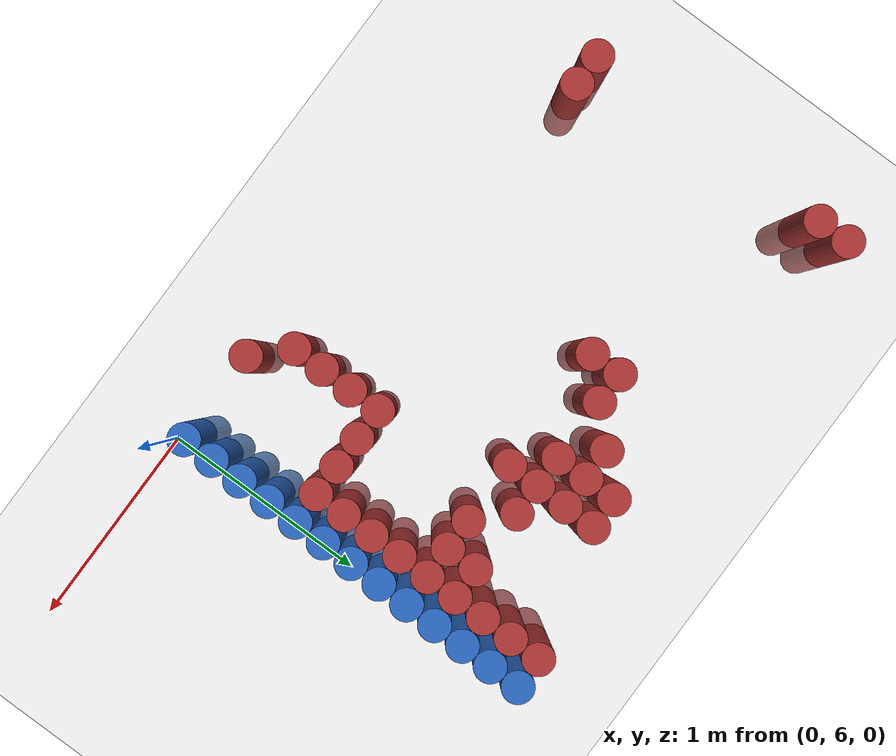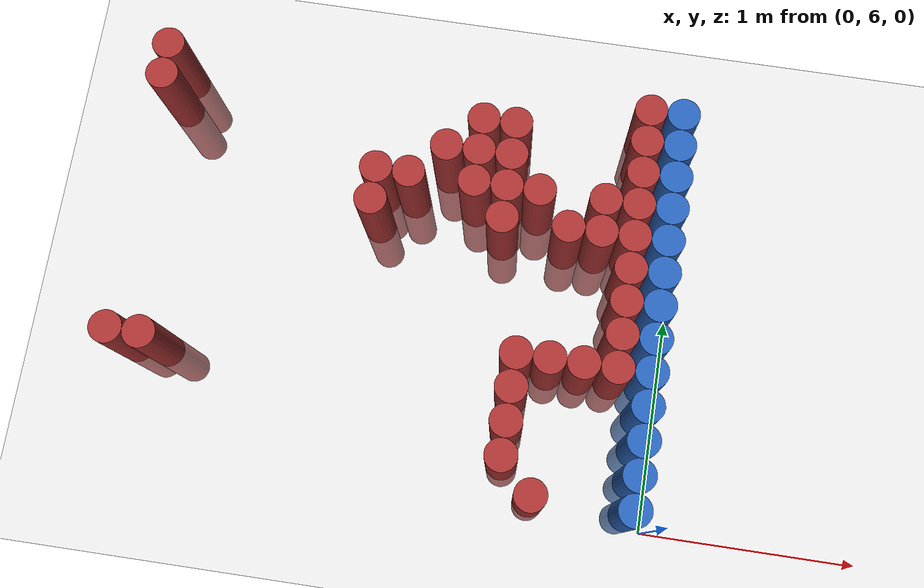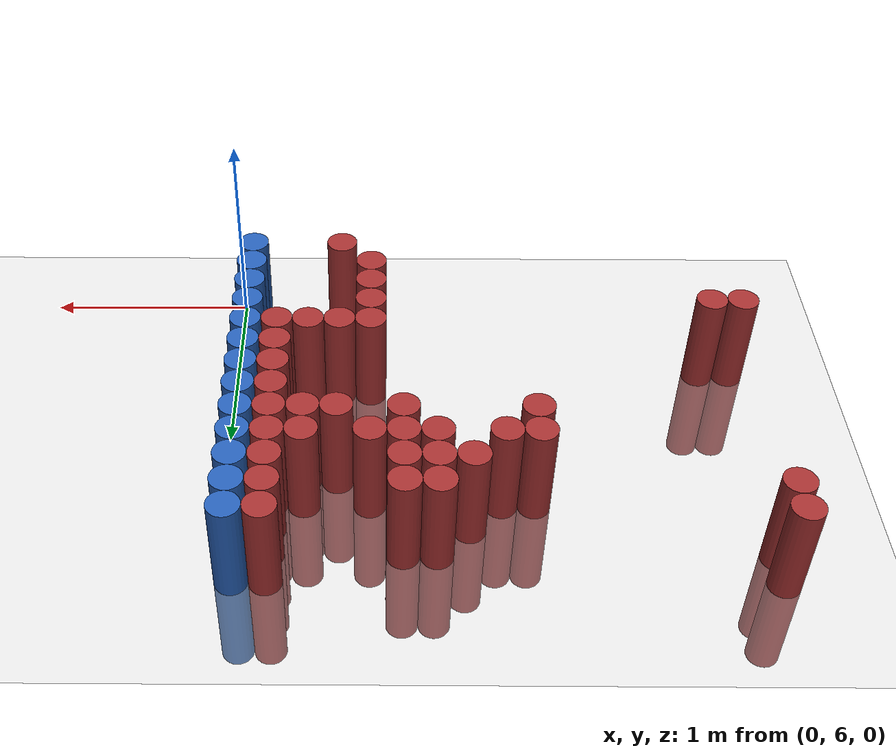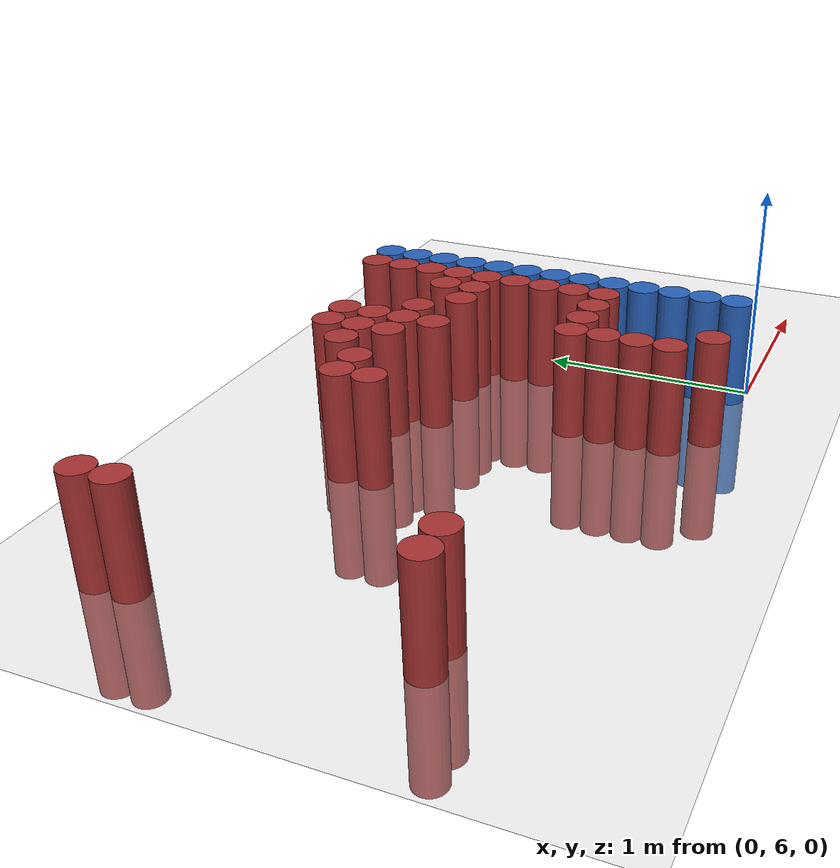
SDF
<sdf version="1.6">
 <world name="default">
  <model name="ground_plane">
   <static>1</static>
   <link name="link">
    <collision name="collision">
     <geometry><plane><normal>0 0 1</normal><size>100 100</size></plane></geometry>
     <surface><friction><ode><mu>100</mu><mu2>50</mu2></ode></friction></surface>
    </collision>
    <visual name="visual">
     <cast_shadows>0</cast_shadows>
     <geometry><plane><normal>0 0 1</normal><size>100 100</size></plane></geometry>
     <material>
      <script><uri>file://media/materials/scripts/gazebo.material</uri><name>Gazebo/Grey</name></script>
     </material>
    </visual>
   </link>
  </model>
  <model name="unit_cylinder_227">
   <static>1</static>
   <pose>-2.475000 6.525000 0.000000 0.000000 0.000000 0.000000</pose>
   <link name="link">
    <inertial>
     <mass>1</mass>
     <inertia><ixx>0.145833</ixx><ixy>0</ixy><ixz>0</ixz><iyy>0.145833</iyy><iyz>0</iyz><izz>0.125</izz></inertia>
    </inertial>
    <collision name="collision">
     <geometry><cylinder><radius>0.075000</radius><length>1</length></cylinder></geometry>
    </collision>
    <visual name="visual">
     <geometry><cylinder><radius>0.075000</radius><length>1</length></cylinder></geometry>
     <material>
      <ambient>0.648000 0.192000 0.192000 1</ambient>
      <diffuse>0.648000 0.192000 0.192000 1</diffuse>
     </material>
     <material>
      <script><name>Gazebo/Grey</name><uri>file://media/materials/scripts/gazebo.material</uri></script>
     </material>
    </visual>
   </link>
  </model>
  <model name="unit_cylinder_228">
   <static>1</static>
   <pose>-2.475000 7.725000 0.000000 0.000000 0.000000 0.000000</pose>
   <link name="link">
    <inertial>
     <mass>1</mass>
     <inertia><ixx>0.145833</ixx><ixy>0</ixy><ixz>0</ixz><iyy>0.145833</iyy><iyz>0</iyz><izz>0.125</izz></inertia>
    </inertial>
    <collision name="collision">
     <geometry><cylinder><radius>0.075000</radius><length>1</length></cylinder></geometry>
    </collision>
    <visual name="visual">
     <geometry><cylinder><radius>0.075000</radius><length>1</length></cylinder></geometry>
     <material>
      <ambient>0.648000 0.192000 0.192000 1</ambient>
      <diffuse>0.648000 0.192000 0.192000 1</diffuse>
     </material>
     <material>
      <script><name>Gazebo/Grey</name><uri>file://media/materials/scripts/gazebo.material</uri></script>
     </material>
    </visual>
   </link>
  </model>
  <model name="unit_cylinder_229">
   <static>1</static>
   <pose>-2.475000 7.875000 0.000000 0.000000 0.000000 0.000000</pose>
   <link name="link">
    <inertial>
     <mass>1</mass>
     <inertia><ixx>0.145833</ixx><ixy>0</ixy><ixz>0</ixz><iyy>0.145833</iyy><iyz>0</iyz><izz>0.125</izz></inertia>
    </inertial>
    <collision name="collision">
     <geometry><cylinder><radius>0.075000</radius><length>1</length></cylinder></geometry>
    </collision>
    <visual name="visual">
     <geometry><cylinder><radius>0.075000</radius><length>1</length></cylinder></geometry>
     <material>
      <ambient>0.648000 0.192000 0.192000 1</ambient>
      <diffuse>0.648000 0.192000 0.192000 1</diffuse>
     </material>
     <material>
      <script><name>Gazebo/Grey</name><uri>file://media/materials/scripts/gazebo.material</uri></script>
     </material>
    </visual>
   </link>
  </model>
  <model name="unit_cylinder_233">
   <static>1</static>
   <pose>-2.325000 6.525000 0.000000 0.000000 0.000000 0.000000</pose>
   <link name="link">
    <inertial>
     <mass>1</mass>
     <inertia><ixx>0.145833</ixx><ixy>0</ixy><ixz>0</ixz><iyy>0.145833</iyy><iyz>0</iyz><izz>0.125</izz></inertia>
    </inertial>
    <collision name="collision">
     <geometry><cylinder><radius>0.075000</radius><length>1</length></cylinder></geometry>
    </collision>
    <visual name="visual">
     <geometry><cylinder><radius>0.075000</radius><length>1</length></cylinder></geometry>
     <material>
      <ambient>0.648000 0.192000 0.192000 1</ambient>
      <diffuse>0.648000 0.192000 0.192000 1</diffuse>
     </material>
     <material>
      <script><name>Gazebo/Grey</name><uri>file://media/materials/scripts/gazebo.material</uri></script>
     </material>
    </visual>
   </link>
  </model>
  <model name="unit_cylinder_253">
   <static>1</static>
   <pose>-1.425000 7.275000 0.000000 0.000000 0.000000 0.000000</pose>
   <link name="link">
    <inertial>
     <mass>1</mass>
     <inertia><ixx>0.145833</ixx><ixy>0</ixy><ixz>0</ixz><iyy>0.145833</iyy><iyz>0</iyz><izz>0.125</izz></inertia>
    </inertial>
    <collision name="collision">
     <geometry><cylinder><radius>0.075000</radius><length>1</length></cylinder></geometry>
    </collision>
    <visual name="visual">
     <geometry><cylinder><radius>0.075000</radius><length>1</length></cylinder></geometry>
     <material>
      <ambient>0.648000 0.192000 0.192000 1</ambient>
      <diffuse>0.648000 0.192000 0.192000 1</diffuse>
     </material>
     <material>
      <script><name>Gazebo/Grey</name><uri>file://media/materials/scripts/gazebo.material</uri></script>
     </material>
    </visual>
   </link>
  </model>
  <model name="unit_cylinder_254">
   <static>1</static>
   <pose>-1.425000 7.425000 0.000000 0.000000 0.000000 0.000000</pose>
   <link name="link">
    <inertial>
     <mass>1</mass>
     <inertia><ixx>0.145833</ixx><ixy>0</ixy><ixz>0</ixz><iyy>0.145833</iyy><iyz>0</iyz><izz>0.125</izz></inertia>
    </inertial>
    <collision name="collision">
     <geometry><cylinder><radius>0.075000</radius><length>1</length></cylinder></geometry>
    </collision>
    <visual name="visual">
     <geometry><cylinder><radius>0.075000</radius><length>1</length></cylinder></geometry>
     <material>
      <ambient>0.648000 0.192000 0.192000 1</ambient>
      <diffuse>0.648000 0.192000 0.192000 1</diffuse>
     </material>
     <material>
      <script><name>Gazebo/Grey</name><uri>file://media/materials/scripts/gazebo.material</uri></script>
     </material>
    </visual>
   </link>
  </model>
  <model name="unit_cylinder_255">
   <static>1</static>
   <pose>-1.275000 7.425000 0.000000 0.000000 0.000000 0.000000</pose>
   <link name="link">
    <inertial>
     <mass>1</mass>
     <inertia><ixx>0.145833</ixx><ixy>0</ixy><ixz>0</ixz><iyy>0.145833</iyy><iyz>0</iyz><izz>0.125</izz></inertia>
    </inertial>
    <collision name="collision">
     <geometry><cylinder><radius>0.075000</radius><length>1</length></cylinder></geometry>
    </collision>
    <visual name="visual">
     <geometry><cylinder><radius>0.075000</radius><length>1</length></cylinder></geometry>
     <material>
      <ambient>0.648000 0.192000 0.192000 1</ambient>
      <diffuse>0.648000 0.192000 0.192000 1</diffuse>
     </material>
     <material>
      <script><name>Gazebo/Grey</name><uri>file://media/materials/scripts/gazebo.material</uri></script>
     </material>
    </visual>
   </link>
  </model>
  <model name="unit_cylinder_256">
   <static>1</static>
   <pose>-1.125000 7.575000 0.000000 0.000000 0.000000 0.000000</pose>
   <link name="link">
    <inertial>
     <mass>1</mass>
     <inertia><ixx>0.145833</ixx><ixy>0</ixy><ixz>0</ixz><iyy>0.145833</iyy><iyz>0</iyz><izz>0.125</izz></inertia>
    </inertial>
    <collision name="collision">
     <geometry><cylinder><radius>0.075000</radius><length>1</length></cylinder></geometry>
    </collision>
    <visual name="visual">
     <geometry><cylinder><radius>0.075000</radius><length>1</length></cylinder></geometry>
     <material>
      <ambient>0.648000 0.192000 0.192000 1</ambient>
      <diffuse>0.648000 0.192000 0.192000 1</diffuse>
     </material>
     <material>
      <script><name>Gazebo/Grey</name><uri>file://media/materials/scripts/gazebo.material</uri></script>
     </material>
    </visual>
   </link>
  </model>
  <model name="unit_cylinder_257">
   <static>1</static>
   <pose>-0.975000 7.425000 0.000000 0.000000 0.000000 0.000000</pose>
   <link name="link">
    <inertial>
     <mass>1</mass>
     <inertia><ixx>0.145833</ixx><ixy>0</ixy><ixz>0</ixz><iyy>0.145833</iyy><iyz>0</iyz><izz>0.125</izz></inertia>
    </inertial>
    <collision name="collision">
     <geometry><cylinder><radius>0.075000</radius><length>1</length></cylinder></geometry>
    </collision>
    <visual name="visual">
     <geometry><cylinder><radius>0.075000</radius><length>1</length></cylinder></geometry>
     <material>
      <ambient>0.648000 0.192000 0.192000 1</ambient>
      <diffuse>0.648000 0.192000 0.192000 1</diffuse>
     </material>
     <material>
      <script><name>Gazebo/Grey</name><uri>file://media/materials/scripts/gazebo.material</uri></script>
     </material>
    </visual>
   </link>
  </model>
  <model name="unit_cylinder_258">
   <static>1</static>
   <pose>-0.975000 7.575000 0.000000 0.000000 0.000000 0.000000</pose>
   <link name="link">
    <inertial>
     <mass>1</mass>
     <inertia><ixx>0.145833</ixx><ixy>0</ixy><ixz>0</ixz><iyy>0.145833</iyy><iyz>0</iyz><izz>0.125</izz></inertia>
    </inertial>
    <collision name="collision">
     <geometry><cylinder><radius>0.075000</radius><length>1</length></cylinder></geometry>
    </collision>
    <visual name="visual">
     <geometry><cylinder><radius>0.075000</radius><length>1</length></cylinder></geometry>
     <material>
      <ambient>0.648000 0.192000 0.192000 1</ambient>
      <diffuse>0.648000 0.192000 0.192000 1</diffuse>
     </material>
     <material>
      <script><name>Gazebo/Grey</name><uri>file://media/materials/scripts/gazebo.material</uri></script>
     </material>
    </visual>
   </link>
  </model>
  <model name="unit_cylinder_259">
   <static>1</static>
   <pose>-0.975000 7.725000 0.000000 0.000000 0.000000 0.000000</pose>
   <link name="link">
    <inertial>
     <mass>1</mass>
     <inertia><ixx>0.145833</ixx><ixy>0</ixy><ixz>0</ixz><iyy>0.145833</iyy><iyz>0</iyz><izz>0.125</izz></inertia>
    </inertial>
    <collision name="collision">
     <geometry><cylinder><radius>0.075000</radius><length>1</length></cylinder></geometry>
    </collision>
    <visual name="visual">
     <geometry><cylinder><radius>0.075000</radius><length>1</length></cylinder></geometry>
     <material>
      <ambient>0.648000 0.192000 0.192000 1</ambient>
      <diffuse>0.648000 0.192000 0.192000 1</diffuse>
     </material>
     <material>
      <script><name>Gazebo/Grey</name><uri>file://media/materials/scripts/gazebo.material</uri></script>
     </material>
    </visual>
   </link>
  </model>
  <model name="unit_cylinder_260">
   <static>1</static>
   <pose>-0.825000 7.275000 0.000000 0.000000 0.000000 0.000000</pose>
   <link name="link">
    <inertial>
     <mass>1</mass>
     <inertia><ixx>0.145833</ixx><ixy>0</ixy><ixz>0</ixz><iyy>0.145833</iyy><iyz>0</iyz><izz>0.125</izz></inertia>
    </inertial>
    <collision name="collision">
     <geometry><cylinder><radius>0.075000</radius><length>1</length></cylinder></geometry>
    </collision>
    <visual name="visual">
     <geometry><cylinder><radius>0.075000</radius><length>1</length></cylinder></geometry>
     <material>
      <ambient>0.648000 0.192000 0.192000 1</ambient>
      <diffuse>0.648000 0.192000 0.192000 1</diffuse>
     </material>
     <material>
      <script><name>Gazebo/Grey</name><uri>file://media/materials/scripts/gazebo.material</uri></script>
     </material>
    </visual>
   </link>
  </model>
  <model name="unit_cylinder_261">
   <static>1</static>
   <pose>-0.825000 7.425000 0.000000 0.000000 0.000000 0.000000</pose>
   <link name="link">
    <inertial>
     <mass>1</mass>
     <inertia><ixx>0.145833</ixx><ixy>0</ixy><ixz>0</ixz><iyy>0.145833</iyy><iyz>0</iyz><izz>0.125</izz></inertia>
    </inertial>
    <collision name="collision">
     <geometry><cylinder><radius>0.075000</radius><length>1</length></cylinder></geometry>
    </collision>
    <visual name="visual">
     <geometry><cylinder><radius>0.075000</radius><length>1</length></cylinder></geometry>
     <material>
      <ambient>0.648000 0.192000 0.192000 1</ambient>
      <diffuse>0.648000 0.192000 0.192000 1</diffuse>
     </material>
     <material>
      <script><name>Gazebo/Grey</name><uri>file://media/materials/scripts/gazebo.material</uri></script>
     </material>
    </visual>
   </link>
  </model>
  <model name="unit_cylinder_262">
   <static>1</static>
   <pose>-0.825000 7.575000 0.000000 0.000000 0.000000 0.000000</pose>
   <link name="link">
    <inertial>
     <mass>1</mass>
     <inertia><ixx>0.145833</ixx><ixy>0</ixy><ixz>0</ixz><iyy>0.145833</iyy><iyz>0</iyz><izz>0.125</izz></inertia>
    </inertial>
    <collision name="collision">
     <geometry><cylinder><radius>0.075000</radius><length>1</length></cylinder></geometry>
    </collision>
    <visual name="visual">
     <geometry><cylinder><radius>0.075000</radius><length>1</length></cylinder></geometry>
     <material>
      <ambient>0.648000 0.192000 0.192000 1</ambient>
      <diffuse>0.648000 0.192000 0.192000 1</diffuse>
     </material>
     <material>
      <script><name>Gazebo/Grey</name><uri>file://media/materials/scripts/gazebo.material</uri></script>
     </material>
    </visual>
   </link>
  </model>
  <model name="unit_cylinder_263">
   <static>1</static>
   <pose>-0.825000 7.725000 0.000000 0.000000 0.000000 0.000000</pose>
   <link name="link">
    <inertial>
     <mass>1</mass>
     <inertia><ixx>0.145833</ixx><ixy>0</ixy><ixz>0</ixz><iyy>0.145833</iyy><iyz>0</iyz><izz>0.125</izz></inertia>
    </inertial>
    <collision name="collision">
     <geometry><cylinder><radius>0.075000</radius><length>1</length></cylinder></geometry>
    </collision>
    <visual name="visual">
     <geometry><cylinder><radius>0.075000</radius><length>1</length></cylinder></geometry>
     <material>
      <ambient>0.648000 0.192000 0.192000 1</ambient>
      <diffuse>0.648000 0.192000 0.192000 1</diffuse>
     </material>
     <material>
      <script><name>Gazebo/Grey</name><uri>file://media/materials/scripts/gazebo.material</uri></script>
     </material>
    </visual>
   </link>
  </model>
  <model name="unit_cylinder_265">
   <static>1</static>
   <pose>-0.675000 6.225000 0.000000 0.000000 0.000000 0.000000</pose>
   <link name="link">
    <inertial>
     <mass>1</mass>
     <inertia><ixx>0.145833</ixx><ixy>0</ixy><ixz>0</ixz><iyy>0.145833</iyy><iyz>0</iyz><izz>0.125</izz></inertia>
    </inertial>
    <collision name="collision">
     <geometry><cylinder><radius>0.075000</radius><length>1</length></cylinder></geometry>
    </collision>
    <visual name="visual">
     <geometry><cylinder><radius>0.075000</radius><length>1</length></cylinder></geometry>
     <material>
      <ambient>0.648000 0.192000 0.192000 1</ambient>
      <diffuse>0.648000 0.192000 0.192000 1</diffuse>
     </material>
     <material>
      <script><name>Gazebo/Grey</name><uri>file://media/materials/scripts/gazebo.material</uri></script>
     </material>
    </visual>
   </link>
  </model>
  <model name="unit_cylinder_266">
   <static>1</static>
   <pose>-0.675000 6.375000 0.000000 0.000000 0.000000 0.000000</pose>
   <link name="link">
    <inertial>
     <mass>1</mass>
     <inertia><ixx>0.145833</ixx><ixy>0</ixy><ixz>0</ixz><iyy>0.145833</iyy><iyz>0</iyz><izz>0.125</izz></inertia>
    </inertial>
    <collision name="collision">
     <geometry><cylinder><radius>0.075000</radius><length>1</length></cylinder></geometry>
    </collision>
    <visual name="visual">
     <geometry><cylinder><radius>0.075000</radius><length>1</length></cylinder></geometry>
     <material>
      <ambient>0.648000 0.192000 0.192000 1</ambient>
      <diffuse>0.648000 0.192000 0.192000 1</diffuse>
     </material>
     <material>
      <script><name>Gazebo/Grey</name><uri>file://media/materials/scripts/gazebo.material</uri></script>
     </material>
    </visual>
   </link>
  </model>
  <model name="unit_cylinder_267">
   <static>1</static>
   <pose>-0.675000 6.525000 0.000000 0.000000 0.000000 0.000000</pose>
   <link name="link">
    <inertial>
     <mass>1</mass>
     <inertia><ixx>0.145833</ixx><ixy>0</ixy><ixz>0</ixz><iyy>0.145833</iyy><iyz>0</iyz><izz>0.125</izz></inertia>
    </inertial>
    <collision name="collision">
     <geometry><cylinder><radius>0.075000</radius><length>1</length></cylinder></geometry>
    </collision>
    <visual name="visual">
     <geometry><cylinder><radius>0.075000</radius><length>1</length></cylinder></geometry>
     <material>
      <ambient>0.648000 0.192000 0.192000 1</ambient>
      <diffuse>0.648000 0.192000 0.192000 1</diffuse>
     </material>
     <material>
      <script><name>Gazebo/Grey</name><uri>file://media/materials/scripts/gazebo.material</uri></script>
     </material>
    </visual>
   </link>
  </model>
  <model name="unit_cylinder_268">
   <static>1</static>
   <pose>-0.675000 6.675000 0.000000 0.000000 0.000000 0.000000</pose>
   <link name="link">
    <inertial>
     <mass>1</mass>
     <inertia><ixx>0.145833</ixx><ixy>0</ixy><ixz>0</ixz><iyy>0.145833</iyy><iyz>0</iyz><izz>0.125</izz></inertia>
    </inertial>
    <collision name="collision">
     <geometry><cylinder><radius>0.075000</radius><length>1</length></cylinder></geometry>
    </collision>
    <visual name="visual">
     <geometry><cylinder><radius>0.075000</radius><length>1</length></cylinder></geometry>
     <material>
      <ambient>0.648000 0.192000 0.192000 1</ambient>
      <diffuse>0.648000 0.192000 0.192000 1</diffuse>
     </material>
     <material>
      <script><name>Gazebo/Grey</name><uri>file://media/materials/scripts/gazebo.material</uri></script>
     </material>
    </visual>
   </link>
  </model>
  <model name="unit_cylinder_269">
   <static>1</static>
   <pose>-0.675000 7.425000 0.000000 0.000000 0.000000 0.000000</pose>
   <link name="link">
    <inertial>
     <mass>1</mass>
     <inertia><ixx>0.145833</ixx><ixy>0</ixy><ixz>0</ixz><iyy>0.145833</iyy><iyz>0</iyz><izz>0.125</izz></inertia>
    </inertial>
    <collision name="collision">
     <geometry><cylinder><radius>0.075000</radius><length>1</length></cylinder></geometry>
    </collision>
    <visual name="visual">
     <geometry><cylinder><radius>0.075000</radius><length>1</length></cylinder></geometry>
     <material>
      <ambient>0.648000 0.192000 0.192000 1</ambient>
      <diffuse>0.648000 0.192000 0.192000 1</diffuse>
     </material>
     <material>
      <script><name>Gazebo/Grey</name><uri>file://media/materials/scripts/gazebo.material</uri></script>
     </material>
    </visual>
   </link>
  </model>
  <model name="unit_cylinder_276">
   <static>1</static>
   <pose>-0.525000 6.075000 0.000000 0.000000 0.000000 0.000000</pose>
   <link name="link">
    <inertial>
     <mass>1</mass>
     <inertia><ixx>0.145833</ixx><ixy>0</ixy><ixz>0</ixz><iyy>0.145833</iyy><iyz>0</iyz><izz>0.125</izz></inertia>
    </inertial>
    <collision name="collision">
     <geometry><cylinder><radius>0.075000</radius><length>1</length></cylinder></geometry>
    </collision>
    <visual name="visual">
     <geometry><cylinder><radius>0.075000</radius><length>1</length></cylinder></geometry>
     <material>
      <ambient>0.648000 0.192000 0.192000 1</ambient>
      <diffuse>0.648000 0.192000 0.192000 1</diffuse>
     </material>
     <material>
      <script><name>Gazebo/Grey</name><uri>file://media/materials/scripts/gazebo.material</uri></script>
     </material>
    </visual>
   </link>
  </model>
  <model name="unit_cylinder_277">
   <static>1</static>
   <pose>-0.525000 6.675000 0.000000 0.000000 0.000000 0.000000</pose>
   <link name="link">
    <inertial>
     <mass>1</mass>
     <inertia><ixx>0.145833</ixx><ixy>0</ixy><ixz>0</ixz><iyy>0.145833</iyy><iyz>0</iyz><izz>0.125</izz></inertia>
    </inertial>
    <collision name="collision">
     <geometry><cylinder><radius>0.075000</radius><length>1</length></cylinder></geometry>
    </collision>
    <visual name="visual">
     <geometry><cylinder><radius>0.075000</radius><length>1</length></cylinder></geometry>
     <material>
      <ambient>0.648000 0.192000 0.192000 1</ambient>
      <diffuse>0.648000 0.192000 0.192000 1</diffuse>
     </material>
     <material>
      <script><name>Gazebo/Grey</name><uri>file://media/materials/scripts/gazebo.material</uri></script>
     </material>
    </visual>
   </link>
  </model>
  <model name="unit_cylinder_278">
   <static>1</static>
   <pose>-0.525000 7.275000 0.000000 0.000000 0.000000 0.000000</pose>
   <link name="link">
    <inertial>
     <mass>1</mass>
     <inertia><ixx>0.145833</ixx><ixy>0</ixy><ixz>0</ixz><iyy>0.145833</iyy><iyz>0</iyz><izz>0.125</izz></inertia>
    </inertial>
    <collision name="collision">
     <geometry><cylinder><radius>0.075000</radius><length>1</length></cylinder></geometry>
    </collision>
    <visual name="visual">
     <geometry><cylinder><radius>0.075000</radius><length>1</length></cylinder></geometry>
     <material>
      <ambient>0.648000 0.192000 0.192000 1</ambient>
      <diffuse>0.648000 0.192000 0.192000 1</diffuse>
     </material>
     <material>
      <script><name>Gazebo/Grey</name><uri>file://media/materials/scripts/gazebo.material</uri></script>
     </material>
    </visual>
   </link>
  </model>
  <model name="unit_cylinder_284">
   <static>1</static>
   <pose>-0.375000 6.675000 0.000000 0.000000 0.000000 0.000000</pose>
   <link name="link">
    <inertial>
     <mass>1</mass>
     <inertia><ixx>0.145833</ixx><ixy>0</ixy><ixz>0</ixz><iyy>0.145833</iyy><iyz>0</iyz><izz>0.125</izz></inertia>
    </inertial>
    <collision name="collision">
     <geometry><cylinder><radius>0.075000</radius><length>1</length></cylinder></geometry>
    </collision>
    <visual name="visual">
     <geometry><cylinder><radius>0.075000</radius><length>1</length></cylinder></geometry>
     <material>
      <ambient>0.648000 0.192000 0.192000 1</ambient>
      <diffuse>0.648000 0.192000 0.192000 1</diffuse>
     </material>
     <material>
      <script><name>Gazebo/Grey</name><uri>file://media/materials/scripts/gazebo.material</uri></script>
     </material>
    </visual>
   </link>
  </model>
  <model name="unit_cylinder_285">
   <static>1</static>
   <pose>-0.375000 7.275000 0.000000 0.000000 0.000000 0.000000</pose>
   <link name="link">
    <inertial>
     <mass>1</mass>
     <inertia><ixx>0.145833</ixx><ixy>0</ixy><ixz>0</ixz><iyy>0.145833</iyy><iyz>0</iyz><izz>0.125</izz></inertia>
    </inertial>
    <collision name="collision">
     <geometry><cylinder><radius>0.075000</radius><length>1</length></cylinder></geometry>
    </collision>
    <visual name="visual">
     <geometry><cylinder><radius>0.075000</radius><length>1</length></cylinder></geometry>
     <material>
      <ambient>0.648000 0.192000 0.192000 1</ambient>
      <diffuse>0.648000 0.192000 0.192000 1</diffuse>
     </material>
     <material>
      <script><name>Gazebo/Grey</name><uri>file://media/materials/scripts/gazebo.material</uri></script>
     </material>
    </visual>
   </link>
  </model>
  <model name="unit_cylinder_286">
   <static>1</static>
   <pose>-0.375000 7.425000 0.000000 0.000000 0.000000 0.000000</pose>
   <link name="link">
    <inertial>
     <mass>1</mass>
     <inertia><ixx>0.145833</ixx><ixy>0</ixy><ixz>0</ixz><iyy>0.145833</iyy><iyz>0</iyz><izz>0.125</izz></inertia>
    </inertial>
    <collision name="collision">
     <geometry><cylinder><radius>0.075000</radius><length>1</length></cylinder></geometry>
    </collision>
    <visual name="visual">
     <geometry><cylinder><radius>0.075000</radius><length>1</length></cylinder></geometry>
     <material>
      <ambient>0.648000 0.192000 0.192000 1</ambient>
      <diffuse>0.648000 0.192000 0.192000 1</diffuse>
     </material>
     <material>
      <script><name>Gazebo/Grey</name><uri>file://media/materials/scripts/gazebo.material</uri></script>
     </material>
    </visual>
   </link>
  </model>
  <model name="unit_cylinder_290">
   <static>1</static>
   <pose>-0.225000 6.675000 0.000000 0.000000 0.000000 0.000000</pose>
   <link name="link">
    <inertial>
     <mass>1</mass>
     <inertia><ixx>0.145833</ixx><ixy>0</ixy><ixz>0</ixz><iyy>0.145833</iyy><iyz>0</iyz><izz>0.125</izz></inertia>
    </inertial>
    <collision name="collision">
     <geometry><cylinder><radius>0.075000</radius><length>1</length></cylinder></geometry>
    </collision>
    <visual name="visual">
     <geometry><cylinder><radius>0.075000</radius><length>1</length></cylinder></geometry>
     <material>
      <ambient>0.648000 0.192000 0.192000 1</ambient>
      <diffuse>0.648000 0.192000 0.192000 1</diffuse>
     </material>
     <material>
      <script><name>Gazebo/Grey</name><uri>file://media/materials/scripts/gazebo.material</uri></script>
     </material>
    </visual>
   </link>
  </model>
  <model name="unit_cylinder_291">
   <static>1</static>
   <pose>-0.225000 6.825000 0.000000 0.000000 0.000000 0.000000</pose>
   <link name="link">
    <inertial>
     <mass>1</mass>
     <inertia><ixx>0.145833</ixx><ixy>0</ixy><ixz>0</ixz><iyy>0.145833</iyy><iyz>0</iyz><izz>0.125</izz></inertia>
    </inertial>
    <collision name="collision">
     <geometry><cylinder><radius>0.075000</radius><length>1</length></cylinder></geometry>
    </collision>
    <visual name="visual">
     <geometry><cylinder><radius>0.075000</radius><length>1</length></cylinder></geometry>
     <material>
      <ambient>0.648000 0.192000 0.192000 1</ambient>
      <diffuse>0.648000 0.192000 0.192000 1</diffuse>
     </material>
     <material>
      <script><name>Gazebo/Grey</name><uri>file://media/materials/scripts/gazebo.material</uri></script>
     </material>
    </visual>
   </link>
  </model>
  <model name="unit_cylinder_292">
   <static>1</static>
   <pose>-0.225000 6.975000 0.000000 0.000000 0.000000 0.000000</pose>
   <link name="link">
    <inertial>
     <mass>1</mass>
     <inertia><ixx>0.145833</ixx><ixy>0</ixy><ixz>0</ixz><iyy>0.145833</iyy><iyz>0</iyz><izz>0.125</izz></inertia>
    </inertial>
    <collision name="collision">
     <geometry><cylinder><radius>0.075000</radius><length>1</length></cylinder></geometry>
    </collision>
    <visual name="visual">
     <geometry><cylinder><radius>0.075000</radius><length>1</length></cylinder></geometry>
     <material>
      <ambient>0.648000 0.192000 0.192000 1</ambient>
      <diffuse>0.648000 0.192000 0.192000 1</diffuse>
     </material>
     <material>
      <script><name>Gazebo/Grey</name><uri>file://media/materials/scripts/gazebo.material</uri></script>
     </material>
    </visual>
   </link>
  </model>
  <model name="unit_cylinder_293">
   <static>1</static>
   <pose>-0.225000 7.125000 0.000000 0.000000 0.000000 0.000000</pose>
   <link name="link">
    <inertial>
     <mass>1</mass>
     <inertia><ixx>0.145833</ixx><ixy>0</ixy><ixz>0</ixz><iyy>0.145833</iyy><iyz>0</iyz><izz>0.125</izz></inertia>
    </inertial>
    <collision name="collision">
     <geometry><cylinder><radius>0.075000</radius><length>1</length></cylinder></geometry>
    </collision>
    <visual name="visual">
     <geometry><cylinder><radius>0.075000</radius><length>1</length></cylinder></geometry>
     <material>
      <ambient>0.648000 0.192000 0.192000 1</ambient>
      <diffuse>0.648000 0.192000 0.192000 1</diffuse>
     </material>
     <material>
      <script><name>Gazebo/Grey</name><uri>file://media/materials/scripts/gazebo.material</uri></script>
     </material>
    </visual>
   </link>
  </model>
  <model name="unit_cylinder_294">
   <static>1</static>
   <pose>-0.225000 7.275000 0.000000 0.000000 0.000000 0.000000</pose>
   <link name="link">
    <inertial>
     <mass>1</mass>
     <inertia><ixx>0.145833</ixx><ixy>0</ixy><ixz>0</ixz><iyy>0.145833</iyy><iyz>0</iyz><izz>0.125</izz></inertia>
    </inertial>
    <collision name="collision">
     <geometry><cylinder><radius>0.075000</radius><length>1</length></cylinder></geometry>
    </collision>
    <visual name="visual">
     <geometry><cylinder><radius>0.075000</radius><length>1</length></cylinder></geometry>
     <material>
      <ambient>0.648000 0.192000 0.192000 1</ambient>
      <diffuse>0.648000 0.192000 0.192000 1</diffuse>
     </material>
     <material>
      <script><name>Gazebo/Grey</name><uri>file://media/materials/scripts/gazebo.material</uri></script>
     </material>
    </visual>
   </link>
  </model>
  <model name="unit_cylinder_295">
   <static>1</static>
   <pose>-0.225000 7.425000 0.000000 0.000000 0.000000 0.000000</pose>
   <link name="link">
    <inertial>
     <mass>1</mass>
     <inertia><ixx>0.145833</ixx><ixy>0</ixy><ixz>0</ixz><iyy>0.145833</iyy><iyz>0</iyz><izz>0.125</izz></inertia>
    </inertial>
    <collision name="collision">
     <geometry><cylinder><radius>0.075000</radius><length>1</length></cylinder></geometry>
    </collision>
    <visual name="visual">
     <geometry><cylinder><radius>0.075000</radius><length>1</length></cylinder></geometry>
     <material>
      <ambient>0.648000 0.192000 0.192000 1</ambient>
      <diffuse>0.648000 0.192000 0.192000 1</diffuse>
     </material>
     <material>
      <script><name>Gazebo/Grey</name><uri>file://media/materials/scripts/gazebo.material</uri></script>
     </material>
    </visual>
   </link>
  </model>
  <model name="unit_cylinder_296">
   <static>1</static>
   <pose>-0.225000 7.575000 0.000000 0.000000 0.000000 0.000000</pose>
   <link name="link">
    <inertial>
     <mass>1</mass>
     <inertia><ixx>0.145833</ixx><ixy>0</ixy><ixz>0</ixz><iyy>0.145833</iyy><iyz>0</iyz><izz>0.125</izz></inertia>
    </inertial>
    <collision name="collision">
     <geometry><cylinder><radius>0.075000</radius><length>1</length></cylinder></geometry>
    </collision>
    <visual name="visual">
     <geometry><cylinder><radius>0.075000</radius><length>1</length></cylinder></geometry>
     <material>
      <ambient>0.648000 0.192000 0.192000 1</ambient>
      <diffuse>0.648000 0.192000 0.192000 1</diffuse>
     </material>
     <material>
      <script><name>Gazebo/Grey</name><uri>file://media/materials/scripts/gazebo.material</uri></script>
     </material>
    </visual>
   </link>
  </model>
  <model name="unit_cylinder_297">
   <static>1</static>
   <pose>-0.225000 7.725000 0.000000 0.000000 0.000000 0.000000</pose>
   <link name="link">
    <inertial>
     <mass>1</mass>
     <inertia><ixx>0.145833</ixx><ixy>0</ixy><ixz>0</ixz><iyy>0.145833</iyy><iyz>0</iyz><izz>0.125</izz></inertia>
    </inertial>
    <collision name="collision">
     <geometry><cylinder><radius>0.075000</radius><length>1</length></cylinder></geometry>
    </collision>
    <visual name="visual">
     <geometry><cylinder><radius>0.075000</radius><length>1</length></cylinder></geometry>
     <material>
      <ambient>0.648000 0.192000 0.192000 1</ambient>
      <diffuse>0.648000 0.192000 0.192000 1</diffuse>
     </material>
     <material>
      <script><name>Gazebo/Grey</name><uri>file://media/materials/scripts/gazebo.material</uri></script>
     </material>
    </visual>
   </link>
  </model>
  <model name="unit_cylinder_298">
   <static>1</static>
   <pose>-0.225000 7.875000 0.000000 0.000000 0.000000 0.000000</pose>
   <link name="link">
    <inertial>
     <mass>1</mass>
     <inertia><ixx>0.145833</ixx><ixy>0</ixy><ixz>0</ixz><iyy>0.145833</iyy><iyz>0</iyz><izz>0.125</izz></inertia>
    </inertial>
    <collision name="collision">
     <geometry><cylinder><radius>0.075000</radius><length>1</length></cylinder></geometry>
    </collision>
    <visual name="visual">
     <geometry><cylinder><radius>0.075000</radius><length>1</length></cylinder></geometry>
     <material>
      <ambient>0.648000 0.192000 0.192000 1</ambient>
      <diffuse>0.648000 0.192000 0.192000 1</diffuse>
     </material>
     <material>
      <script><name>Gazebo/Grey</name><uri>file://media/materials/scripts/gazebo.material</uri></script>
     </material>
    </visual>
   </link>
  </model>
  <model name="unit_cylinder_310">
   <static>1</static>
   <pose>-0.075000 6.075000 0.000000 0.000000 0.000000 0.000000</pose>
   <link name="link">
    <inertial>
     <mass>1</mass>
     <inertia><ixx>0.145833</ixx><ixy>0</ixy><ixz>0</ixz><iyy>0.145833</iyy><iyz>0</iyz><izz>0.125</izz></inertia>
    </inertial>
    <collision name="collision">
     <geometry><cylinder><radius>0.075000</radius><length>1</length></cylinder></geometry>
    </collision>
    <visual name="visual">
     <geometry><cylinder><radius>0.075000</radius><length>1</length></cylinder></geometry>
     <material>
      <ambient>0.152000 0.379000 0.720000 1</ambient>
      <diffuse>0.152000 0.379000 0.720000 1</diffuse>
     </material>
     <material>
      <script><name>Gazebo/Grey</name><uri>file://media/materials/scripts/gazebo.material</uri></script>
     </material>
    </visual>
   </link>
  </model>
  <model name="unit_cylinder_311">
   <static>1</static>
   <pose>-0.075000 6.225000 0.000000 0.000000 0.000000 0.000000</pose>
   <link name="link">
    <inertial>
     <mass>1</mass>
     <inertia><ixx>0.145833</ixx><ixy>0</ixy><ixz>0</ixz><iyy>0.145833</iyy><iyz>0</iyz><izz>0.125</izz></inertia>
    </inertial>
    <collision name="collision">
     <geometry><cylinder><radius>0.075000</radius><length>1</length></cylinder></geometry>
    </collision>
    <visual name="visual">
     <geometry><cylinder><radius>0.075000</radius><length>1</length></cylinder></geometry>
     <material>
      <ambient>0.152000 0.379000 0.720000 1</ambient>
      <diffuse>0.152000 0.379000 0.720000 1</diffuse>
     </material>
     <material>
      <script><name>Gazebo/Grey</name><uri>file://media/materials/scripts/gazebo.material</uri></script>
     </material>
    </visual>
   </link>
  </model>
  <model name="unit_cylinder_312">
   <static>1</static>
   <pose>-0.075000 6.375000 0.000000 0.000000 0.000000 0.000000</pose>
   <link name="link">
    <inertial>
     <mass>1</mass>
     <inertia><ixx>0.145833</ixx><ixy>0</ixy><ixz>0</ixz><iyy>0.145833</iyy><iyz>0</iyz><izz>0.125</izz></inertia>
    </inertial>
    <collision name="collision">
     <geometry><cylinder><radius>0.075000</radius><length>1</length></cylinder></geometry>
    </collision>
    <visual name="visual">
     <geometry><cylinder><radius>0.075000</radius><length>1</length></cylinder></geometry>
     <material>
      <ambient>0.152000 0.379000 0.720000 1</ambient>
      <diffuse>0.152000 0.379000 0.720000 1</diffuse>
     </material>
     <material>
      <script><name>Gazebo/Grey</name><uri>file://media/materials/scripts/gazebo.material</uri></script>
     </material>
    </visual>
   </link>
  </model>
  <model name="unit_cylinder_313">
   <static>1</static>
   <pose>-0.075000 6.525000 0.000000 0.000000 0.000000 0.000000</pose>
   <link name="link">
    <inertial>
     <mass>1</mass>
     <inertia><ixx>0.145833</ixx><ixy>0</ixy><ixz>0</ixz><iyy>0.145833</iyy><iyz>0</iyz><izz>0.125</izz></inertia>
    </inertial>
    <collision name="collision">
     <geometry><cylinder><radius>0.075000</radius><length>1</length></cylinder></geometry>
    </collision>
    <visual name="visual">
     <geometry><cylinder><radius>0.075000</radius><length>1</length></cylinder></geometry>
     <material>
      <ambient>0.152000 0.379000 0.720000 1</ambient>
      <diffuse>0.152000 0.379000 0.720000 1</diffuse>
     </material>
     <material>
      <script><name>Gazebo/Grey</name><uri>file://media/materials/scripts/gazebo.material</uri></script>
     </material>
    </visual>
   </link>
  </model>
  <model name="unit_cylinder_314">
   <static>1</static>
   <pose>-0.075000 6.675000 0.000000 0.000000 0.000000 0.000000</pose>
   <link name="link">
    <inertial>
     <mass>1</mass>
     <inertia><ixx>0.145833</ixx><ixy>0</ixy><ixz>0</ixz><iyy>0.145833</iyy><iyz>0</iyz><izz>0.125</izz></inertia>
    </inertial>
    <collision name="collision">
     <geometry><cylinder><radius>0.075000</radius><length>1</length></cylinder></geometry>
    </collision>
    <visual name="visual">
     <geometry><cylinder><radius>0.075000</radius><length>1</length></cylinder></geometry>
     <material>
      <ambient>0.152000 0.379000 0.720000 1</ambient>
      <diffuse>0.152000 0.379000 0.720000 1</diffuse>
     </material>
     <material>
      <script><name>Gazebo/Grey</name><uri>file://media/materials/scripts/gazebo.material</uri></script>
     </material>
    </visual>
   </link>
  </model>
  <model name="unit_cylinder_315">
   <static>1</static>
   <pose>-0.075000 6.825000 0.000000 0.000000 0.000000 0.000000</pose>
   <link name="link">
    <inertial>
     <mass>1</mass>
     <inertia><ixx>0.145833</ixx><ixy>0</ixy><ixz>0</ixz><iyy>0.145833</iyy><iyz>0</iyz><izz>0.125</izz></inertia>
    </inertial>
    <collision name="collision">
     <geometry><cylinder><radius>0.075000</radius><length>1</length></cylinder></geometry>
    </collision>
    <visual name="visual">
     <geometry><cylinder><radius>0.075000</radius><length>1</length></cylinder></geometry>
     <material>
      <ambient>0.152000 0.379000 0.720000 1</ambient>
      <diffuse>0.152000 0.379000 0.720000 1</diffuse>
     </material>
     <material>
      <script><name>Gazebo/Grey</name><uri>file://media/materials/scripts/gazebo.material</uri></script>
     </material>
    </visual>
   </link>
  </model>
  <model name="unit_cylinder_316">
   <static>1</static>
   <pose>-0.075000 6.975000 0.000000 0.000000 0.000000 0.000000</pose>
   <link name="link">
    <inertial>
     <mass>1</mass>
     <inertia><ixx>0.145833</ixx><ixy>0</ixy><ixz>0</ixz><iyy>0.145833</iyy><iyz>0</iyz><izz>0.125</izz></inertia>
    </inertial>
    <collision name="collision">
     <geometry><cylinder><radius>0.075000</radius><length>1</length></cylinder></geometry>
    </collision>
    <visual name="visual">
     <geometry><cylinder><radius>0.075000</radius><length>1</length></cylinder></geometry>
     <material>
      <ambient>0.152000 0.379000 0.720000 1</ambient>
      <diffuse>0.152000 0.379000 0.720000 1</diffuse>
     </material>
     <material>
      <script><name>Gazebo/Grey</name><uri>file://media/materials/scripts/gazebo.material</uri></script>
     </material>
    </visual>
   </link>
  </model>
  <model name="unit_cylinder_317">
   <static>1</static>
   <pose>-0.075000 7.125000 0.000000 0.000000 0.000000 0.000000</pose>
   <link name="link">
    <inertial>
     <mass>1</mass>
     <inertia><ixx>0.145833</ixx><ixy>0</ixy><ixz>0</ixz><iyy>0.145833</iyy><iyz>0</iyz><izz>0.125</izz></inertia>
    </inertial>
    <collision name="collision">
     <geometry><cylinder><radius>0.075000</radius><length>1</length></cylinder></geometry>
    </collision>
    <visual name="visual">
     <geometry><cylinder><radius>0.075000</radius><length>1</length></cylinder></geometry>
     <material>
      <ambient>0.152000 0.379000 0.720000 1</ambient>
      <diffuse>0.152000 0.379000 0.720000 1</diffuse>
     </material>
     <material>
      <script><name>Gazebo/Grey</name><uri>file://media/materials/scripts/gazebo.material</uri></script>
     </material>
    </visual>
   </link>
  </model>
  <model name="unit_cylinder_318">
   <static>1</static>
   <pose>-0.075000 7.275000 0.000000 0.000000 0.000000 0.000000</pose>
   <link name="link">
    <inertial>
     <mass>1</mass>
     <inertia><ixx>0.145833</ixx><ixy>0</ixy><ixz>0</ixz><iyy>0.145833</iyy><iyz>0</iyz><izz>0.125</izz></inertia>
    </inertial>
    <collision name="collision">
     <geometry><cylinder><radius>0.075000</radius><length>1</length></cylinder></geometry>
    </collision>
    <visual name="visual">
     <geometry><cylinder><radius>0.075000</radius><length>1</length></cylinder></geometry>
     <material>
      <ambient>0.152000 0.379000 0.720000 1</ambient>
      <diffuse>0.152000 0.379000 0.720000 1</diffuse>
     </material>
     <material>
      <script><name>Gazebo/Grey</name><uri>file://media/materials/scripts/gazebo.material</uri></script>
     </material>
    </visual>
   </link>
  </model>
  <model name="unit_cylinder_319">
   <static>1</static>
   <pose>-0.075000 7.425000 0.000000 0.000000 0.000000 0.000000</pose>
   <link name="link">
    <inertial>
     <mass>1</mass>
     <inertia><ixx>0.145833</ixx><ixy>0</ixy><ixz>0</ixz><iyy>0.145833</iyy><iyz>0</iyz><izz>0.125</izz></inertia>
    </inertial>
    <collision name="collision">
     <geometry><cylinder><radius>0.075000</radius><length>1</length></cylinder></geometry>
    </collision>
    <visual name="visual">
     <geometry><cylinder><radius>0.075000</radius><length>1</length></cylinder></geometry>
     <material>
      <ambient>0.152000 0.379000 0.720000 1</ambient>
      <diffuse>0.152000 0.379000 0.720000 1</diffuse>
     </material>
     <material>
      <script><name>Gazebo/Grey</name><uri>file://media/materials/scripts/gazebo.material</uri></script>
     </material>
    </visual>
   </link>
  </model>
  <model name="unit_cylinder_320">
   <static>1</static>
   <pose>-0.075000 7.575000 0.000000 0.000000 0.000000 0.000000</pose>
   <link name="link">
    <inertial>
     <mass>1</mass>
     <inertia><ixx>0.145833</ixx><ixy>0</ixy><ixz>0</ixz><iyy>0.145833</iyy><iyz>0</iyz><izz>0.125</izz></inertia>
    </inertial>
    <collision name="collision">
     <geometry><cylinder><radius>0.075000</radius><length>1</length></cylinder></geometry>
    </collision>
    <visual name="visual">
     <geometry><cylinder><radius>0.075000</radius><length>1</length></cylinder></geometry>
     <material>
      <ambient>0.152000 0.379000 0.720000 1</ambient>
      <diffuse>0.152000 0.379000 0.720000 1</diffuse>
     </material>
     <material>
      <script><name>Gazebo/Grey</name><uri>file://media/materials/scripts/gazebo.material</uri></script>
     </material>
    </visual>
   </link>
  </model>
  <model name="unit_cylinder_321">
   <static>1</static>
   <pose>-0.075000 7.725000 0.000000 0.000000 0.000000 0.000000</pose>
   <link name="link">
    <inertial>
     <mass>1</mass>
     <inertia><ixx>0.145833</ixx><ixy>0</ixy><ixz>0</ixz><iyy>0.145833</iyy><iyz>0</iyz><izz>0.125</izz></inertia>
    </inertial>
    <collision name="collision">
     <geometry><cylinder><radius>0.075000</radius><length>1</length></cylinder></geometry>
    </collision>
    <visual name="visual">
     <geometry><cylinder><radius>0.075000</radius><length>1</length></cylinder></geometry>
     <material>
      <ambient>0.152000 0.379000 0.720000 1</ambient>
      <diffuse>0.152000 0.379000 0.720000 1</diffuse>
     </material>
     <material>
      <script><name>Gazebo/Grey</name><uri>file://media/materials/scripts/gazebo.material</uri></script>
     </material>
    </visual>
   </link>
  </model>
  <model name="unit_cylinder_322">
   <static>1</static>
   <pose>-0.075000 7.875000 0.000000 0.000000 0.000000 0.000000</pose>
   <link name="link">
    <inertial>
     <mass>1</mass>
     <inertia><ixx>0.145833</ixx><ixy>0</ixy><ixz>0</ixz><iyy>0.145833</iyy><iyz>0</iyz><izz>0.125</izz></inertia>
    </inertial>
    <collision name="collision">
     <geometry><cylinder><radius>0.075000</radius><length>1</length></cylinder></geometry>
    </collision>
    <visual name="visual">
     <geometry><cylinder><radius>0.075000</radius><length>1</length></cylinder></geometry>
     <material>
      <ambient>0.152000 0.379000 0.720000 1</ambient>
      <diffuse>0.152000 0.379000 0.720000 1</diffuse>
     </material>
     <material>
      <script><name>Gazebo/Grey</name><uri>file://media/materials/scripts/gazebo.material</uri></script>
     </material>
    </visual>
   </link>
  </model>
 </world>
</sdf>
